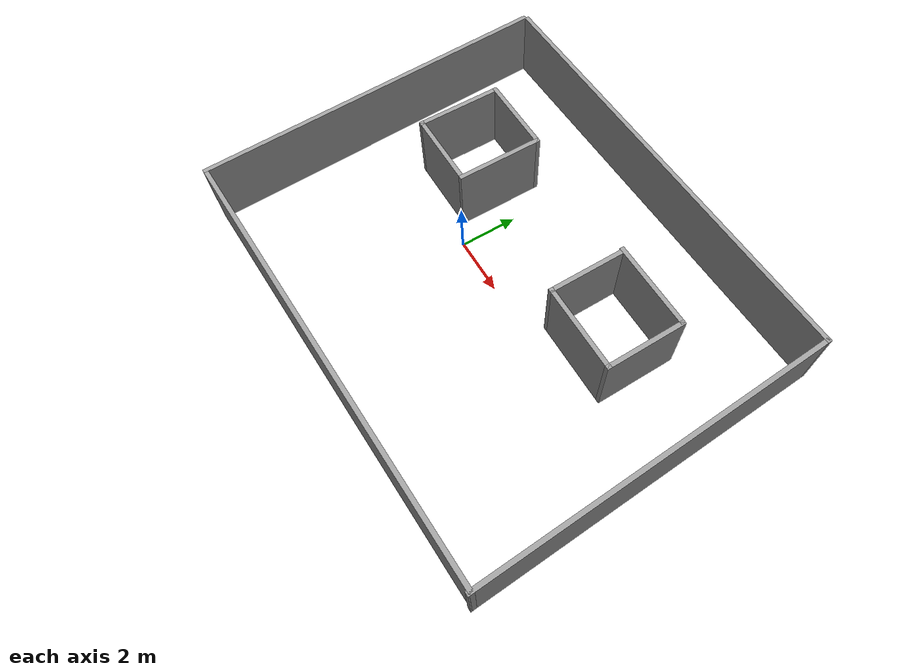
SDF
<?xml version='1.0'?>
<sdf version='1.7'>
  <model name='Map'>
    <pose>2.07703 0.050837 0 0 -0 0</pose>
    <link name='Wall_0'>
      <collision name='Wall_0_Collision'>
        <geometry>
          <box>
            <size>12.5482 0.15 2.5</size>
          </box>
        </geometry>
        <pose>0 0 1.25 0 -0 0</pose>
      </collision>
      <visual name='Wall_0_Visual'>
        <pose>0 0 1.25 0 -0 0</pose>
        <geometry>
          <box>
            <size>12.5482 0.15 2.5</size>
          </box>
        </geometry>
        <material>
          <script>
            <uri>file://media/materials/scripts/gazebo.material</uri>
            <name>Gazebo/Grey</name>
          </script>
          <ambient>1 1 1 1</ambient>
        </material>
        <meta>
          <layer>0</layer>
        </meta>
      </visual>
      <pose>-7.65617 -0.185261 0 0 -0 -1.52751</pose>
    </link>
    <link name='Wall_1'>
      <collision name='Wall_1_Collision'>
        <geometry>
          <box>
            <size>15.4354 0.15 2.5</size>
          </box>
        </geometry>
        <pose>0 0 1.25 0 -0 0</pose>
      </collision>
      <visual name='Wall_1_Visual'>
        <pose>0 0 1.25 0 -0 0</pose>
        <geometry>
          <box>
            <size>15.4354 0.15 2.5</size>
          </box>
        </geometry>
        <material>
          <script>
            <uri>file://media/materials/scripts/gazebo.material</uri>
            <name>Gazebo/Grey</name>
          </script>
          <ambient>1 1 1 1</ambient>
        </material>
        <meta>
          <layer>0</layer>
        </meta>
      </visual>
      <pose>0.290806 -5.99627 0 0 -0 0.050041</pose>
    </link>
    <link name='Wall_10'>
      <collision name='Wall_10_Collision'>
        <geometry>
          <box>
            <size>2.75 0.15 2.5</size>
          </box>
        </geometry>
        <pose>0 0 1.25 0 -0 0</pose>
      </collision>
      <visual name='Wall_10_Visual'>
        <pose>0 0 1.25 0 -0 0</pose>
        <geometry>
          <box>
            <size>2.75 0.15 2.5</size>
          </box>
        </geometry>
        <material>
          <script>
            <uri>file://media/materials/scripts/gazebo.material</uri>
            <name>Gazebo/Grey</name>
          </script>
          <ambient>1 1 1 1</ambient>
        </material>
        <meta>
          <layer>0</layer>
        </meta>
      </visual>
      <pose>-4.19619 3.31814 0 0 -0 3.14159</pose>
    </link>
    <link name='Wall_12'>
      <collision name='Wall_12_Collision'>
        <geometry>
          <box>
            <size>2.75 0.15 2.5</size>
          </box>
        </geometry>
        <pose>0 0 1.25 0 -0 0</pose>
      </collision>
      <visual name='Wall_12_Visual'>
        <pose>0 0 1.25 0 -0 0</pose>
        <geometry>
          <box>
            <size>2.75 0.15 2.5</size>
          </box>
        </geometry>
        <material>
          <script>
            <uri>file://media/materials/scripts/gazebo.material</uri>
            <name>Gazebo/Grey</name>
          </script>
          <ambient>1 1 1 1</ambient>
        </material>
        <meta>
          <layer>0</layer>
        </meta>
      </visual>
      <pose>2.03214 1.92689 0 0 -0 -1.5708</pose>
    </link>
    <link name='Wall_13'>
      <collision name='Wall_13_Collision'>
        <geometry>
          <box>
            <size>3 0.15 2.5</size>
          </box>
        </geometry>
        <pose>0 0 1.25 0 -0 0</pose>
      </collision>
      <visual name='Wall_13_Visual'>
        <pose>0 0 1.25 0 -0 0</pose>
        <geometry>
          <box>
            <size>3 0.15 2.5</size>
          </box>
        </geometry>
        <material>
          <script>
            <uri>file://media/materials/scripts/gazebo.material</uri>
            <name>Gazebo/Grey</name>
          </script>
          <ambient>1 1 1 1</ambient>
        </material>
        <meta>
          <layer>0</layer>
        </meta>
      </visual>
      <pose>3.45714 0.626891 0 0 -0 0</pose>
    </link>
    <link name='Wall_14'>
      <collision name='Wall_14_Collision'>
        <geometry>
          <box>
            <size>2.75 0.15 2.5</size>
          </box>
        </geometry>
        <pose>0 0 1.25 0 -0 0</pose>
      </collision>
      <visual name='Wall_14_Visual'>
        <pose>0 0 1.25 0 -0 0</pose>
        <geometry>
          <box>
            <size>2.75 0.15 2.5</size>
          </box>
        </geometry>
        <material>
          <script>
            <uri>file://media/materials/scripts/gazebo.material</uri>
            <name>Gazebo/Grey</name>
          </script>
          <ambient>1 1 1 1</ambient>
        </material>
        <meta>
          <layer>0</layer>
        </meta>
      </visual>
      <pose>4.88214 1.92689 0 0 -0 1.5708</pose>
    </link>
    <link name='Wall_15'>
      <collision name='Wall_15_Collision'>
        <geometry>
          <box>
            <size>3 0.15 2.5</size>
          </box>
        </geometry>
        <pose>0 0 1.25 0 -0 0</pose>
      </collision>
      <visual name='Wall_15_Visual'>
        <pose>0 0 1.25 0 -0 0</pose>
        <geometry>
          <box>
            <size>3 0.15 2.5</size>
          </box>
        </geometry>
        <material>
          <script>
            <uri>file://media/materials/scripts/gazebo.material</uri>
            <name>Gazebo/Grey</name>
          </script>
          <ambient>1 1 1 1</ambient>
        </material>
        <meta>
          <layer>0</layer>
        </meta>
      </visual>
      <pose>3.41152 3.22689 0 0 -0 3.14159</pose>
    </link>
    <link name='Wall_2'>
      <collision name='Wall_2_Collision'>
        <geometry>
          <box>
            <size>12.1538 0.15 2.5</size>
          </box>
        </geometry>
        <pose>0 0 1.25 0 -0 0</pose>
      </collision>
      <visual name='Wall_2_Visual'>
        <pose>0 0 1.25 0 -0 0</pose>
        <geometry>
          <box>
            <size>12.1538 0.15 2.5</size>
          </box>
        </geometry>
        <material>
          <script>
            <uri>file://media/materials/scripts/gazebo.material</uri>
            <name>Gazebo/Grey</name>
          </script>
          <ambient>1 1 1 1</ambient>
        </material>
        <meta>
          <layer>0</layer>
        </meta>
      </visual>
      <pose>7.69227 0.337827 0 0 -0 1.6094</pose>
    </link>
    <link name='Wall_3'>
      <collision name='Wall_3_Collision'>
        <geometry>
          <box>
            <size>15.4142 0.15 2.5</size>
          </box>
        </geometry>
        <pose>0 0 1.25 0 -0 0</pose>
      </collision>
      <visual name='Wall_3_Visual'>
        <pose>0 0 1.25 0 -0 0</pose>
        <geometry>
          <box>
            <size>15.4142 0.15 2.5</size>
          </box>
        </geometry>
        <material>
          <script>
            <uri>file://media/materials/scripts/gazebo.material</uri>
            <name>Gazebo/Grey</name>
          </script>
          <ambient>1 1 1 1</ambient>
        </material>
        <meta>
          <layer>0</layer>
        </meta>
      </visual>
      <pose>-0.170639 6.24401 0 0 -0 -3.12366</pose>
    </link>
    <link name='Wall_7'>
      <collision name='Wall_7_Collision'>
        <geometry>
          <box>
            <size>3 0.15 2.5</size>
          </box>
        </geometry>
        <pose>0 0 1.25 0 -0 0</pose>
      </collision>
      <visual name='Wall_7_Visual'>
        <pose>0 0 1.25 0 -0 0</pose>
        <geometry>
          <box>
            <size>3 0.15 2.5</size>
          </box>
        </geometry>
        <material>
          <script>
            <uri>file://media/materials/scripts/gazebo.material</uri>
            <name>Gazebo/Grey</name>
          </script>
          <ambient>1 1 1 1</ambient>
        </material>
        <meta>
          <layer>0</layer>
        </meta>
      </visual>
      <pose>-5.49619 1.89314 0 0 -0 -1.5708</pose>
    </link>
    <link name='Wall_8'>
      <collision name='Wall_8_Collision'>
        <geometry>
          <box>
            <size>2.75 0.15 2.5</size>
          </box>
        </geometry>
        <pose>0 0 1.25 0 -0 0</pose>
      </collision>
      <visual name='Wall_8_Visual'>
        <pose>0 0 1.25 0 -0 0</pose>
        <geometry>
          <box>
            <size>2.75 0.15 2.5</size>
          </box>
        </geometry>
        <material>
          <script>
            <uri>file://media/materials/scripts/gazebo.material</uri>
            <name>Gazebo/Grey</name>
          </script>
          <ambient>1 1 1 1</ambient>
        </material>
        <meta>
          <layer>0</layer>
        </meta>
      </visual>
      <pose>-4.19619 0.468144 0 0 -0 0</pose>
    </link>
    <link name='Wall_9'>
      <collision name='Wall_9_Collision'>
        <geometry>
          <box>
            <size>3 0.15 2.5</size>
          </box>
        </geometry>
        <pose>0 0 1.25 0 -0 0</pose>
      </collision>
      <visual name='Wall_9_Visual'>
        <pose>0 0 1.25 0 -0 0</pose>
        <geometry>
          <box>
            <size>3 0.15 2.5</size>
          </box>
        </geometry>
        <material>
          <script>
            <uri>file://media/materials/scripts/gazebo.material</uri>
            <name>Gazebo/Grey</name>
          </script>
          <ambient>1 1 1 1</ambient>
        </material>
        <meta>
          <layer>0</layer>
        </meta>
      </visual>
      <pose>-2.89619 1.89314 0 0 -0 1.5708</pose>
    </link>
    <static>1</static>
  </model>
</sdf>
